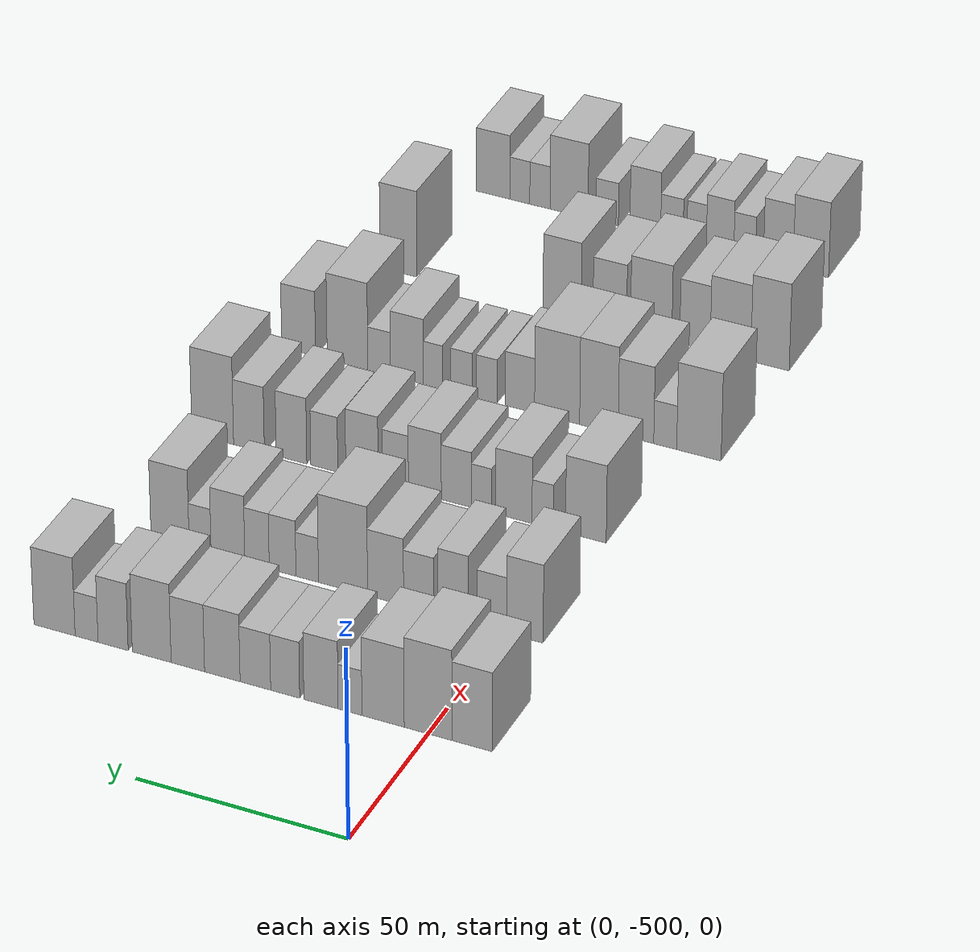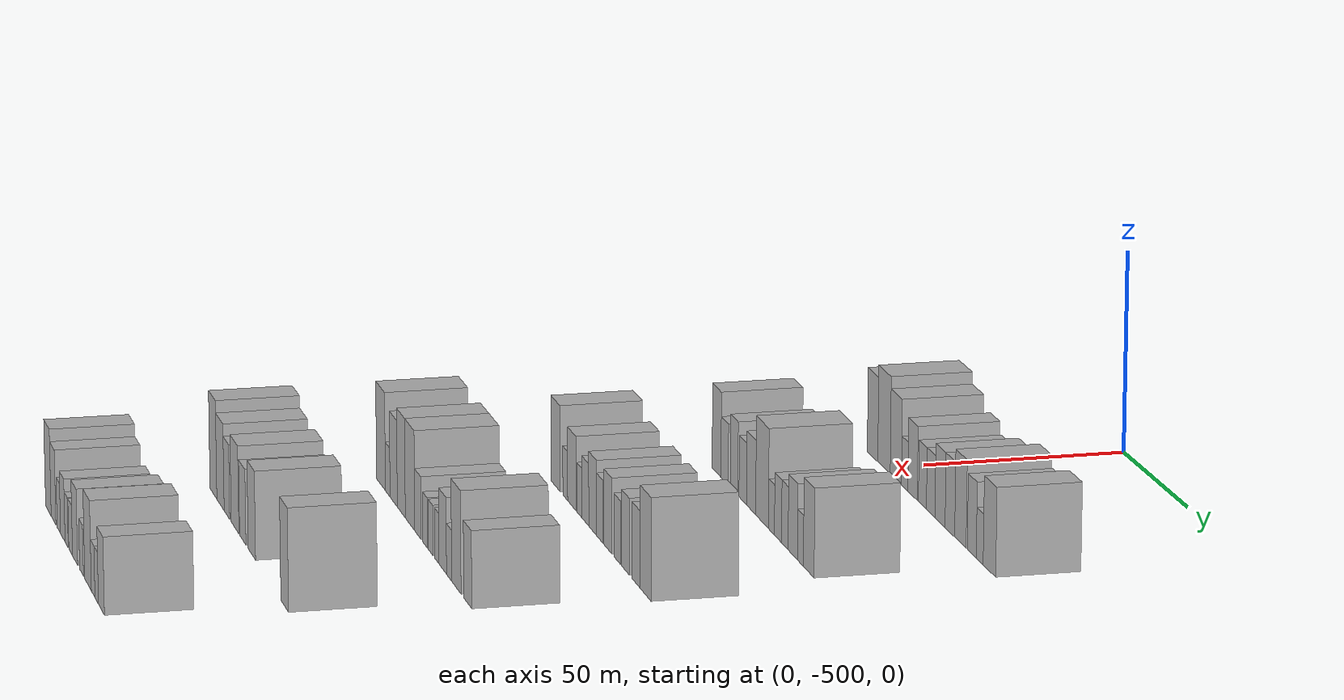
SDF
<sdf version="1.6">
 <world name="default">
  <model name="building_14">
   <static>1</static>
   <pose>50.0000 -510.2933 0 0.000000 0.000000 0.000000</pose>
   <link name="link">
    <pose>0 0 10.50 0 0 0</pose>
    <collision name="collision"><geometry><box><size>20.0000 9.5571 21.0000</size></box></geometry></collision>
    <visual name="visual">
     <cast_shadows>0</cast_shadows>
     <geometry><box><size>20.0000 9.5571 21.0000</size></box></geometry>
     <material>
      <script>
       <uri>model://HANNAS_wall/materials/scripts</uri>
       <uri>model://HANNAS_wall/materials/textures</uri>
       <name>vrc/HANNAS_wall</name>
      </script>
     </material>
    </visual>
   </link>
  </model>
  <model name="building_15">
   <static>1</static>
   <pose>50.0000 -499.8959 0 0.000000 0.000000 0.000000</pose>
   <link name="link">
    <pose>0 0 12.00 0 0 0</pose>
    <collision name="collision"><geometry><box><size>20.0000 11.2377 24.0000</size></box></geometry></collision>
    <visual name="visual">
     <cast_shadows>0</cast_shadows>
     <geometry><box><size>20.0000 11.2377 24.0000</size></box></geometry>
     <material>
      <script>
       <uri>model://HANNAS_wall/materials/scripts</uri>
       <uri>model://HANNAS_wall/materials/textures</uri>
       <name>vrc/HANNAS_wall</name>
      </script>
     </material>
    </visual>
   </link>
  </model>
  <model name="building_16">
   <static>1</static>
   <pose>50.0000 -489.2593 0 0.000000 0.000000 0.000000</pose>
   <link name="link">
    <pose>0 0 10.50 0 0 0</pose>
    <collision name="collision"><geometry><box><size>20.0000 10.0355 21.0000</size></box></geometry></collision>
    <visual name="visual">
     <cast_shadows>0</cast_shadows>
     <geometry><box><size>20.0000 10.0355 21.0000</size></box></geometry>
     <material>
      <script>
       <uri>model://HANNAS_wall/materials/scripts</uri>
       <uri>model://HANNAS_wall/materials/textures</uri>
       <name>vrc/HANNAS_wall</name>
      </script>
     </material>
    </visual>
   </link>
  </model>
  <model name="building_17">
   <static>1</static>
   <pose>50.0000 -481.4059 0 0.000000 0.000000 0.000000</pose>
   <link name="link">
    <pose>0 0 6.00 0 0 0</pose>
    <collision name="collision"><geometry><box><size>20.0000 5.6714 12.0000</size></box></geometry></collision>
    <visual name="visual">
     <cast_shadows>0</cast_shadows>
     <geometry><box><size>20.0000 5.6714 12.0000</size></box></geometry>
     <material>
      <script>
       <uri>model://HANNAS_wall/materials/scripts</uri>
       <uri>model://HANNAS_wall/materials/textures</uri>
       <name>vrc/HANNAS_wall</name>
      </script>
     </material>
    </visual>
   </link>
  </model>
  <model name="building_18">
   <static>1</static>
   <pose>50.0000 -474.4728 0 0.000000 0.000000 0.000000</pose>
   <link name="link">
    <pose>0 0 9.00 0 0 0</pose>
    <collision name="collision"><geometry><box><size>20.0000 8.1948 18.0000</size></box></geometry></collision>
    <visual name="visual">
     <cast_shadows>0</cast_shadows>
     <geometry><box><size>20.0000 8.1948 18.0000</size></box></geometry>
     <material>
      <script>
       <uri>model://HANNAS_wall/materials/scripts</uri>
       <uri>model://HANNAS_wall/materials/textures</uri>
       <name>vrc/HANNAS_wall</name>
      </script>
     </material>
    </visual>
   </link>
  </model>
  <model name="building_19">
   <static>1</static>
   <pose>50.0000 -465.8986 0 0.000000 0.000000 0.000000</pose>
   <link name="link">
    <pose>0 0 7.50 0 0 0</pose>
    <collision name="collision"><geometry><box><size>20.0000 6.9536 15.0000</size></box></geometry></collision>
    <visual name="visual">
     <cast_shadows>0</cast_shadows>
     <geometry><box><size>20.0000 6.9536 15.0000</size></box></geometry>
     <material>
      <script>
       <uri>model://HANNAS_wall/materials/scripts</uri>
       <uri>model://HANNAS_wall/materials/textures</uri>
       <name>vrc/HANNAS_wall</name>
      </script>
     </material>
    </visual>
   </link>
  </model>
  <model name="building_20">
   <static>1</static>
   <pose>50.0000 -458.7400 0 0.000000 0.000000 0.000000</pose>
   <link name="link">
    <pose>0 0 7.50 0 0 0</pose>
    <collision name="collision"><geometry><box><size>20.0000 7.3635 15.0000</size></box></geometry></collision>
    <visual name="visual">
     <cast_shadows>0</cast_shadows>
     <geometry><box><size>20.0000 7.3635 15.0000</size></box></geometry>
     <material>
      <script>
       <uri>model://HANNAS_wall/materials/scripts</uri>
       <uri>model://HANNAS_wall/materials/textures</uri>
       <name>vrc/HANNAS_wall</name>
      </script>
     </material>
    </visual>
   </link>
  </model>
  <model name="building_21">
   <static>1</static>
   <pose>50.0000 -450.7693 0 0.000000 0.000000 0.000000</pose>
   <link name="link">
    <pose>0 0 9.00 0 0 0</pose>
    <collision name="collision"><geometry><box><size>20.0000 8.5780 18.0000</size></box></geometry></collision>
    <visual name="visual">
     <cast_shadows>0</cast_shadows>
     <geometry><box><size>20.0000 8.5780 18.0000</size></box></geometry>
     <material>
      <script>
       <uri>model://HANNAS_wall/materials/scripts</uri>
       <uri>model://HANNAS_wall/materials/textures</uri>
       <name>vrc/HANNAS_wall</name>
      </script>
     </material>
    </visual>
   </link>
  </model>
  <model name="building_22">
   <static>1</static>
   <pose>50.0000 -442.4271 0 0.000000 0.000000 0.000000</pose>
   <link name="link">
    <pose>0 0 9.00 0 0 0</pose>
    <collision name="collision"><geometry><box><size>20.0000 8.1065 18.0000</size></box></geometry></collision>
    <visual name="visual">
     <cast_shadows>0</cast_shadows>
     <geometry><box><size>20.0000 8.1065 18.0000</size></box></geometry>
     <material>
      <script>
       <uri>model://HANNAS_wall/materials/scripts</uri>
       <uri>model://HANNAS_wall/materials/textures</uri>
       <name>vrc/HANNAS_wall</name>
      </script>
     </material>
    </visual>
   </link>
  </model>
  <model name="building_23">
   <static>1</static>
   <pose>50.0000 -433.6353 0 0.000000 0.000000 0.000000</pose>
   <link name="link">
    <pose>0 0 10.50 0 0 0</pose>
    <collision name="collision"><geometry><box><size>20.0000 9.4771 21.0000</size></box></geometry></collision>
    <visual name="visual">
     <cast_shadows>0</cast_shadows>
     <geometry><box><size>20.0000 9.4771 21.0000</size></box></geometry>
     <material>
      <script>
       <uri>model://HANNAS_wall/materials/scripts</uri>
       <uri>model://HANNAS_wall/materials/textures</uri>
       <name>vrc/HANNAS_wall</name>
      </script>
     </material>
    </visual>
   </link>
  </model>
  <model name="building_24">
   <static>1</static>
   <pose>50.0000 -424.2158 0 0.000000 0.000000 0.000000</pose>
   <link name="link">
    <pose>0 0 9.00 0 0 0</pose>
    <collision name="collision"><geometry><box><size>20.0000 7.3619 18.0000</size></box></geometry></collision>
    <visual name="visual">
     <cast_shadows>0</cast_shadows>
     <geometry><box><size>20.0000 7.3619 18.0000</size></box></geometry>
     <material>
      <script>
       <uri>model://HANNAS_wall/materials/scripts</uri>
       <uri>model://HANNAS_wall/materials/textures</uri>
       <name>vrc/HANNAS_wall</name>
      </script>
     </material>
    </visual>
   </link>
  </model>
  <model name="building_25">
   <static>1</static>
   <pose>50.0000 -417.7162 0 0.000000 0.000000 0.000000</pose>
   <link name="link">
    <pose>0 0 6.00 0 0 0</pose>
    <collision name="collision"><geometry><box><size>20.0000 5.6374 12.0000</size></box></geometry></collision>
    <visual name="visual">
     <cast_shadows>0</cast_shadows>
     <geometry><box><size>20.0000 5.6374 12.0000</size></box></geometry>
     <material>
      <script>
       <uri>model://HANNAS_wall/materials/scripts</uri>
       <uri>model://HANNAS_wall/materials/textures</uri>
       <name>vrc/HANNAS_wall</name>
      </script>
     </material>
    </visual>
   </link>
  </model>
  <model name="building_26">
   <static>1</static>
   <pose>50.0000 -409.8251 0 0.000000 0.000000 0.000000</pose>
   <link name="link">
    <pose>0 0 10.50 0 0 0</pose>
    <collision name="collision"><geometry><box><size>20.0000 10.1448 21.0000</size></box></geometry></collision>
    <visual name="visual">
     <cast_shadows>0</cast_shadows>
     <geometry><box><size>20.0000 10.1448 21.0000</size></box></geometry>
     <material>
      <script>
       <uri>model://HANNAS_wall/materials/scripts</uri>
       <uri>model://HANNAS_wall/materials/textures</uri>
       <name>vrc/HANNAS_wall</name>
      </script>
     </material>
    </visual>
   </link>
  </model>
  <model name="building_157">
   <static>1</static>
   <pose>90.0000 -504.7712 0 0.000000 0.000000 0.000000</pose>
   <link name="link">
    <pose>0 0 10.50 0 0 0</pose>
    <collision name="collision"><geometry><box><size>20.0000 8.7549 21.0000</size></box></geometry></collision>
    <visual name="visual">
     <cast_shadows>0</cast_shadows>
     <geometry><box><size>20.0000 8.7549 21.0000</size></box></geometry>
     <material>
      <script>
       <uri>model://HANNAS_wall/materials/scripts</uri>
       <uri>model://HANNAS_wall/materials/textures</uri>
       <name>vrc/HANNAS_wall</name>
      </script>
     </material>
    </visual>
   </link>
  </model>
  <model name="building_158">
   <static>1</static>
   <pose>90.0000 -496.8091 0 0.000000 0.000000 0.000000</pose>
   <link name="link">
    <pose>0 0 7.50 0 0 0</pose>
    <collision name="collision"><geometry><box><size>20.0000 7.1692 15.0000</size></box></geometry></collision>
    <visual name="visual">
     <cast_shadows>0</cast_shadows>
     <geometry><box><size>20.0000 7.1692 15.0000</size></box></geometry>
     <material>
      <script>
       <uri>model://HANNAS_wall/materials/scripts</uri>
       <uri>model://HANNAS_wall/materials/textures</uri>
       <name>vrc/HANNAS_wall</name>
      </script>
     </material>
    </visual>
   </link>
  </model>
  <model name="building_159">
   <static>1</static>
   <pose>90.0000 -487.5349 0 0.000000 0.000000 0.000000</pose>
   <link name="link">
    <pose>0 0 9.00 0 0 0</pose>
    <collision name="collision"><geometry><box><size>20.0000 7.3791 18.0000</size></box></geometry></collision>
    <visual name="visual">
     <cast_shadows>0</cast_shadows>
     <geometry><box><size>20.0000 7.3791 18.0000</size></box></geometry>
     <material>
      <script>
       <uri>model://HANNAS_wall/materials/scripts</uri>
       <uri>model://HANNAS_wall/materials/textures</uri>
       <name>vrc/HANNAS_wall</name>
      </script>
     </material>
    </visual>
   </link>
  </model>
  <model name="building_160">
   <static>1</static>
   <pose>90.0000 -479.1978 0 0.000000 0.000000 0.000000</pose>
   <link name="link">
    <pose>0 0 7.50 0 0 0</pose>
    <collision name="collision"><geometry><box><size>20.0000 7.2951 15.0000</size></box></geometry></collision>
    <visual name="visual">
     <cast_shadows>0</cast_shadows>
     <geometry><box><size>20.0000 7.2951 15.0000</size></box></geometry>
     <material>
      <script>
       <uri>model://HANNAS_wall/materials/scripts</uri>
       <uri>model://HANNAS_wall/materials/textures</uri>
       <name>vrc/HANNAS_wall</name>
      </script>
     </material>
    </visual>
   </link>
  </model>
  <model name="building_161">
   <static>1</static>
   <pose>90.0000 -471.1731 0 0.000000 0.000000 0.000000</pose>
   <link name="link">
    <pose>0 0 9.00 0 0 0</pose>
    <collision name="collision"><geometry><box><size>20.0000 8.7544 18.0000</size></box></geometry></collision>
    <visual name="visual">
     <cast_shadows>0</cast_shadows>
     <geometry><box><size>20.0000 8.7544 18.0000</size></box></geometry>
     <material>
      <script>
       <uri>model://HANNAS_wall/materials/scripts</uri>
       <uri>model://HANNAS_wall/materials/textures</uri>
       <name>vrc/HANNAS_wall</name>
      </script>
     </material>
    </visual>
   </link>
  </model>
  <model name="building_162">
   <static>1</static>
   <pose>90.0000 -460.7985 0 0.000000 0.000000 0.000000</pose>
   <link name="link">
    <pose>0 0 12.00 0 0 0</pose>
    <collision name="collision"><geometry><box><size>20.0000 11.9949 24.0000</size></box></geometry></collision>
    <visual name="visual">
     <cast_shadows>0</cast_shadows>
     <geometry><box><size>20.0000 11.9949 24.0000</size></box></geometry>
     <material>
      <script>
       <uri>model://HANNAS_wall/materials/scripts</uri>
       <uri>model://HANNAS_wall/materials/textures</uri>
       <name>vrc/HANNAS_wall</name>
      </script>
     </material>
    </visual>
   </link>
  </model>
  <model name="building_163">
   <static>1</static>
   <pose>90.0000 -452.0313 0 0.000000 0.000000 0.000000</pose>
   <link name="link">
    <pose>0 0 6.00 0 0 0</pose>
    <collision name="collision"><geometry><box><size>20.0000 5.5394 12.0000</size></box></geometry></collision>
    <visual name="visual">
     <cast_shadows>0</cast_shadows>
     <geometry><box><size>20.0000 5.5394 12.0000</size></box></geometry>
     <material>
      <script>
       <uri>model://HANNAS_wall/materials/scripts</uri>
       <uri>model://HANNAS_wall/materials/textures</uri>
       <name>vrc/HANNAS_wall</name>
      </script>
     </material>
    </visual>
   </link>
  </model>
  <model name="building_164">
   <static>1</static>
   <pose>90.0000 -445.9774 0 0.000000 0.000000 0.000000</pose>
   <link name="link">
    <pose>0 0 7.50 0 0 0</pose>
    <collision name="collision"><geometry><box><size>20.0000 6.5683 15.0000</size></box></geometry></collision>
    <visual name="visual">
     <cast_shadows>0</cast_shadows>
     <geometry><box><size>20.0000 6.5683 15.0000</size></box></geometry>
     <material>
      <script>
       <uri>model://HANNAS_wall/materials/scripts</uri>
       <uri>model://HANNAS_wall/materials/textures</uri>
       <name>vrc/HANNAS_wall</name>
      </script>
     </material>
    </visual>
   </link>
  </model>
  <model name="building_165">
   <static>1</static>
   <pose>90.0000 -439.6885 0 0.000000 0.000000 0.000000</pose>
   <link name="link">
    <pose>0 0 7.50 0 0 0</pose>
    <collision name="collision"><geometry><box><size>20.0000 6.0095 15.0000</size></box></geometry></collision>
    <visual name="visual">
     <cast_shadows>0</cast_shadows>
     <geometry><box><size>20.0000 6.0095 15.0000</size></box></geometry>
     <material>
      <script>
       <uri>model://HANNAS_wall/materials/scripts</uri>
       <uri>model://HANNAS_wall/materials/textures</uri>
       <name>vrc/HANNAS_wall</name>
      </script>
     </material>
    </visual>
   </link>
  </model>
  <model name="building_166">
   <static>1</static>
   <pose>90.0000 -432.5055 0 0.000000 0.000000 0.000000</pose>
   <link name="link">
    <pose>0 0 9.00 0 0 0</pose>
    <collision name="collision"><geometry><box><size>20.0000 8.3567 18.0000</size></box></geometry></collision>
    <visual name="visual">
     <cast_shadows>0</cast_shadows>
     <geometry><box><size>20.0000 8.3567 18.0000</size></box></geometry>
     <material>
      <script>
       <uri>model://HANNAS_wall/materials/scripts</uri>
       <uri>model://HANNAS_wall/materials/textures</uri>
       <name>vrc/HANNAS_wall</name>
      </script>
     </material>
    </visual>
   </link>
  </model>
  <model name="building_167">
   <static>1</static>
   <pose>90.0000 -425.6043 0 0.000000 0.000000 0.000000</pose>
   <link name="link">
    <pose>0 0 6.00 0 0 0</pose>
    <collision name="collision"><geometry><box><size>20.0000 5.4456 12.0000</size></box></geometry></collision>
    <visual name="visual">
     <cast_shadows>0</cast_shadows>
     <geometry><box><size>20.0000 5.4456 12.0000</size></box></geometry>
     <material>
      <script>
       <uri>model://HANNAS_wall/materials/scripts</uri>
       <uri>model://HANNAS_wall/materials/textures</uri>
       <name>vrc/HANNAS_wall</name>
      </script>
     </material>
    </visual>
   </link>
  </model>
  <model name="building_168">
   <static>1</static>
   <pose>90.0000 -418.1313 0 0.000000 0.000000 0.000000</pose>
   <link name="link">
    <pose>0 0 10.50 0 0 0</pose>
    <collision name="collision"><geometry><box><size>20.0000 9.5003 21.0000</size></box></geometry></collision>
    <visual name="visual">
     <cast_shadows>0</cast_shadows>
     <geometry><box><size>20.0000 9.5003 21.0000</size></box></geometry>
     <material>
      <script>
       <uri>model://HANNAS_wall/materials/scripts</uri>
       <uri>model://HANNAS_wall/materials/textures</uri>
       <name>vrc/HANNAS_wall</name>
      </script>
     </material>
    </visual>
   </link>
  </model>
  <model name="building_294">
   <static>1</static>
   <pose>130.0000 -501.8209 0 0.000000 0.000000 0.000000</pose>
   <link name="link">
    <pose>0 0 10.50 0 0 0</pose>
    <collision name="collision"><geometry><box><size>20.0000 9.9045 21.0000</size></box></geometry></collision>
    <visual name="visual">
     <cast_shadows>0</cast_shadows>
     <geometry><box><size>20.0000 9.9045 21.0000</size></box></geometry>
     <material>
      <script>
       <uri>model://HANNAS_wall/materials/scripts</uri>
       <uri>model://HANNAS_wall/materials/textures</uri>
       <name>vrc/HANNAS_wall</name>
      </script>
     </material>
    </visual>
   </link>
  </model>
  <model name="building_295">
   <static>1</static>
   <pose>130.0000 -491.2690 0 0.000000 0.000000 0.000000</pose>
   <link name="link">
    <pose>0 0 6.00 0 0 0</pose>
    <collision name="collision"><geometry><box><size>20.0000 5.1993 12.0000</size></box></geometry></collision>
    <visual name="visual">
     <cast_shadows>0</cast_shadows>
     <geometry><box><size>20.0000 5.1993 12.0000</size></box></geometry>
     <material>
      <script>
       <uri>model://HANNAS_wall/materials/scripts</uri>
       <uri>model://HANNAS_wall/materials/textures</uri>
       <name>vrc/HANNAS_wall</name>
      </script>
     </material>
    </visual>
   </link>
  </model>
  <model name="building_296">
   <static>1</static>
   <pose>130.0000 -484.2086 0 0.000000 0.000000 0.000000</pose>
   <link name="link">
    <pose>0 0 9.00 0 0 0</pose>
    <collision name="collision"><geometry><box><size>20.0000 8.9215 18.0000</size></box></geometry></collision>
    <visual name="visual">
     <cast_shadows>0</cast_shadows>
     <geometry><box><size>20.0000 8.9215 18.0000</size></box></geometry>
     <material>
      <script>
       <uri>model://HANNAS_wall/materials/scripts</uri>
       <uri>model://HANNAS_wall/materials/textures</uri>
       <name>vrc/HANNAS_wall</name>
      </script>
     </material>
    </visual>
   </link>
  </model>
  <model name="building_297">
   <static>1</static>
   <pose>130.0000 -476.2665 0 0.000000 0.000000 0.000000</pose>
   <link name="link">
    <pose>0 0 6.00 0 0 0</pose>
    <collision name="collision"><geometry><box><size>20.0000 4.9625 12.0000</size></box></geometry></collision>
    <visual name="visual">
     <cast_shadows>0</cast_shadows>
     <geometry><box><size>20.0000 4.9625 12.0000</size></box></geometry>
     <material>
      <script>
       <uri>model://HANNAS_wall/materials/scripts</uri>
       <uri>model://HANNAS_wall/materials/textures</uri>
       <name>vrc/HANNAS_wall</name>
      </script>
     </material>
    </visual>
   </link>
  </model>
  <model name="building_298">
   <static>1</static>
   <pose>130.0000 -470.0543 0 0.000000 0.000000 0.000000</pose>
   <link name="link">
    <pose>0 0 7.50 0 0 0</pose>
    <collision name="collision"><geometry><box><size>20.0000 7.4619 15.0000</size></box></geometry></collision>
    <visual name="visual">
     <cast_shadows>0</cast_shadows>
     <geometry><box><size>20.0000 7.4619 15.0000</size></box></geometry>
     <material>
      <script>
       <uri>model://HANNAS_wall/materials/scripts</uri>
       <uri>model://HANNAS_wall/materials/textures</uri>
       <name>vrc/HANNAS_wall</name>
      </script>
     </material>
    </visual>
   </link>
  </model>
  <model name="building_299">
   <static>1</static>
   <pose>130.0000 -462.2434 0 0.000000 0.000000 0.000000</pose>
   <link name="link">
    <pose>0 0 9.00 0 0 0</pose>
    <collision name="collision"><geometry><box><size>20.0000 8.1600 18.0000</size></box></geometry></collision>
    <visual name="visual">
     <cast_shadows>0</cast_shadows>
     <geometry><box><size>20.0000 8.1600 18.0000</size></box></geometry>
     <material>
      <script>
       <uri>model://HANNAS_wall/materials/scripts</uri>
       <uri>model://HANNAS_wall/materials/textures</uri>
       <name>vrc/HANNAS_wall</name>
      </script>
     </material>
    </visual>
   </link>
  </model>
  <model name="building_300">
   <static>1</static>
   <pose>130.0000 -454.8946 0 0.000000 0.000000 0.000000</pose>
   <link name="link">
    <pose>0 0 7.50 0 0 0</pose>
    <collision name="collision"><geometry><box><size>20.0000 6.5376 15.0000</size></box></geometry></collision>
    <visual name="visual">
     <cast_shadows>0</cast_shadows>
     <geometry><box><size>20.0000 6.5376 15.0000</size></box></geometry>
     <material>
      <script>
       <uri>model://HANNAS_wall/materials/scripts</uri>
       <uri>model://HANNAS_wall/materials/textures</uri>
       <name>vrc/HANNAS_wall</name>
      </script>
     </material>
    </visual>
   </link>
  </model>
  <model name="building_301">
   <static>1</static>
   <pose>130.0000 -446.5856 0 0.000000 0.000000 0.000000</pose>
   <link name="link">
    <pose>0 0 9.00 0 0 0</pose>
    <collision name="collision"><geometry><box><size>20.0000 8.0802 18.0000</size></box></geometry></collision>
    <visual name="visual">
     <cast_shadows>0</cast_shadows>
     <geometry><box><size>20.0000 8.0802 18.0000</size></box></geometry>
     <material>
      <script>
       <uri>model://HANNAS_wall/materials/scripts</uri>
       <uri>model://HANNAS_wall/materials/textures</uri>
       <name>vrc/HANNAS_wall</name>
      </script>
     </material>
    </visual>
   </link>
  </model>
  <model name="building_302">
   <static>1</static>
   <pose>130.0000 -437.1595 0 0.000000 0.000000 0.000000</pose>
   <link name="link">
    <pose>0 0 7.50 0 0 0</pose>
    <collision name="collision"><geometry><box><size>20.0000 6.7720 15.0000</size></box></geometry></collision>
    <visual name="visual">
     <cast_shadows>0</cast_shadows>
     <geometry><box><size>20.0000 6.7720 15.0000</size></box></geometry>
     <material>
      <script>
       <uri>model://HANNAS_wall/materials/scripts</uri>
       <uri>model://HANNAS_wall/materials/textures</uri>
       <name>vrc/HANNAS_wall</name>
      </script>
     </material>
    </visual>
   </link>
  </model>
  <model name="building_303">
   <static>1</static>
   <pose>130.0000 -428.9290 0 0.000000 0.000000 0.000000</pose>
   <link name="link">
    <pose>0 0 9.00 0 0 0</pose>
    <collision name="collision"><geometry><box><size>20.0000 7.6891 18.0000</size></box></geometry></collision>
    <visual name="visual">
     <cast_shadows>0</cast_shadows>
     <geometry><box><size>20.0000 7.6891 18.0000</size></box></geometry>
     <material>
      <script>
       <uri>model://HANNAS_wall/materials/scripts</uri>
       <uri>model://HANNAS_wall/materials/textures</uri>
       <name>vrc/HANNAS_wall</name>
      </script>
     </material>
    </visual>
   </link>
  </model>
  <model name="building_304">
   <static>1</static>
   <pose>130.0000 -418.1907 0 0.000000 0.000000 0.000000</pose>
   <link name="link">
    <pose>0 0 9.00 0 0 0</pose>
    <collision name="collision"><geometry><box><size>20.0000 7.7874 18.0000</size></box></geometry></collision>
    <visual name="visual">
     <cast_shadows>0</cast_shadows>
     <geometry><box><size>20.0000 7.7874 18.0000</size></box></geometry>
     <material>
      <script>
       <uri>model://HANNAS_wall/materials/scripts</uri>
       <uri>model://HANNAS_wall/materials/textures</uri>
       <name>vrc/HANNAS_wall</name>
      </script>
     </material>
    </visual>
   </link>
  </model>
  <model name="building_305">
   <static>1</static>
   <pose>130.0000 -408.9998 0 0.000000 0.000000 0.000000</pose>
   <link name="link">
    <pose>0 0 12.00 0 0 0</pose>
    <collision name="collision"><geometry><box><size>20.0000 10.5945 24.0000</size></box></geometry></collision>
    <visual name="visual">
     <cast_shadows>0</cast_shadows>
     <geometry><box><size>20.0000 10.5945 24.0000</size></box></geometry>
     <material>
      <script>
       <uri>model://HANNAS_wall/materials/scripts</uri>
       <uri>model://HANNAS_wall/materials/textures</uri>
       <name>vrc/HANNAS_wall</name>
      </script>
     </material>
    </visual>
   </link>
  </model>
  <model name="building_431">
   <static>1</static>
   <pose>170.0000 -512.3389 0 0.000000 0.000000 0.000000</pose>
   <link name="link">
    <pose>0 0 12.00 0 0 0</pose>
    <collision name="collision"><geometry><box><size>20.0000 10.9442 24.0000</size></box></geometry></collision>
    <visual name="visual">
     <cast_shadows>0</cast_shadows>
     <geometry><box><size>20.0000 10.9442 24.0000</size></box></geometry>
     <material>
      <script>
       <uri>model://HANNAS_wall/materials/scripts</uri>
       <uri>model://HANNAS_wall/materials/textures</uri>
       <name>vrc/HANNAS_wall</name>
      </script>
     </material>
    </visual>
   </link>
  </model>
  <model name="building_432">
   <static>1</static>
   <pose>170.0000 -504.0252 0 0.000000 0.000000 0.000000</pose>
   <link name="link">
    <pose>0 0 6.00 0 0 0</pose>
    <collision name="collision"><geometry><box><size>20.0000 5.6831 12.0000</size></box></geometry></collision>
    <visual name="visual">
     <cast_shadows>0</cast_shadows>
     <geometry><box><size>20.0000 5.6831 12.0000</size></box></geometry>
     <material>
      <script>
       <uri>model://HANNAS_wall/materials/scripts</uri>
       <uri>model://HANNAS_wall/materials/textures</uri>
       <name>vrc/HANNAS_wall</name>
      </script>
     </material>
    </visual>
   </link>
  </model>
  <model name="building_433">
   <static>1</static>
   <pose>170.0000 -496.7724 0 0.000000 0.000000 0.000000</pose>
   <link name="link">
    <pose>0 0 10.50 0 0 0</pose>
    <collision name="collision"><geometry><box><size>20.0000 8.8225 21.0000</size></box></geometry></collision>
    <visual name="visual">
     <cast_shadows>0</cast_shadows>
     <geometry><box><size>20.0000 8.8225 21.0000</size></box></geometry>
     <material>
      <script>
       <uri>model://HANNAS_wall/materials/scripts</uri>
       <uri>model://HANNAS_wall/materials/textures</uri>
       <name>vrc/HANNAS_wall</name>
      </script>
     </material>
    </visual>
   </link>
  </model>
  <model name="building_434">
   <static>1</static>
   <pose>170.0000 -487.5609 0 0.000000 0.000000 0.000000</pose>
   <link name="link">
    <pose>0 0 12.00 0 0 0</pose>
    <collision name="collision"><geometry><box><size>20.0000 9.6005 24.0000</size></box></geometry></collision>
    <visual name="visual">
     <cast_shadows>0</cast_shadows>
     <geometry><box><size>20.0000 9.6005 24.0000</size></box></geometry>
     <material>
      <script>
       <uri>model://HANNAS_wall/materials/scripts</uri>
       <uri>model://HANNAS_wall/materials/textures</uri>
       <name>vrc/HANNAS_wall</name>
      </script>
     </material>
    </visual>
   </link>
  </model>
  <model name="building_435">
   <static>1</static>
   <pose>170.0000 -477.1231 0 0.000000 0.000000 0.000000</pose>
   <link name="link">
    <pose>0 0 12.00 0 0 0</pose>
    <collision name="collision"><geometry><box><size>20.0000 11.2752 24.0000</size></box></geometry></collision>
    <visual name="visual">
     <cast_shadows>0</cast_shadows>
     <geometry><box><size>20.0000 11.2752 24.0000</size></box></geometry>
     <material>
      <script>
       <uri>model://HANNAS_wall/materials/scripts</uri>
       <uri>model://HANNAS_wall/materials/textures</uri>
       <name>vrc/HANNAS_wall</name>
      </script>
     </material>
    </visual>
   </link>
  </model>
  <model name="building_436">
   <static>1</static>
   <pose>170.0000 -467.8001 0 0.000000 0.000000 0.000000</pose>
   <link name="link">
    <pose>0 0 7.50 0 0 0</pose>
    <collision name="collision"><geometry><box><size>20.0000 7.3707 15.0000</size></box></geometry></collision>
    <visual name="visual">
     <cast_shadows>0</cast_shadows>
     <geometry><box><size>20.0000 7.3707 15.0000</size></box></geometry>
     <material>
      <script>
       <uri>model://HANNAS_wall/materials/scripts</uri>
       <uri>model://HANNAS_wall/materials/textures</uri>
       <name>vrc/HANNAS_wall</name>
      </script>
     </material>
    </visual>
   </link>
  </model>
  <model name="building_437">
   <static>1</static>
   <pose>170.0000 -459.4392 0 0.000000 0.000000 0.000000</pose>
   <link name="link">
    <pose>0 0 6.00 0 0 0</pose>
    <collision name="collision"><geometry><box><size>20.0000 5.3512 12.0000</size></box></geometry></collision>
    <visual name="visual">
     <cast_shadows>0</cast_shadows>
     <geometry><box><size>20.0000 5.3512 12.0000</size></box></geometry>
     <material>
      <script>
       <uri>model://HANNAS_wall/materials/scripts</uri>
       <uri>model://HANNAS_wall/materials/textures</uri>
       <name>vrc/HANNAS_wall</name>
      </script>
     </material>
    </visual>
   </link>
  </model>
  <model name="building_438">
   <static>1</static>
   <pose>170.0000 -453.0164 0 0.000000 0.000000 0.000000</pose>
   <link name="link">
    <pose>0 0 6.00 0 0 0</pose>
    <collision name="collision"><geometry><box><size>20.0000 5.4944 12.0000</size></box></geometry></collision>
    <visual name="visual">
     <cast_shadows>0</cast_shadows>
     <geometry><box><size>20.0000 5.4944 12.0000</size></box></geometry>
     <material>
      <script>
       <uri>model://HANNAS_wall/materials/scripts</uri>
       <uri>model://HANNAS_wall/materials/textures</uri>
       <name>vrc/HANNAS_wall</name>
      </script>
     </material>
    </visual>
   </link>
  </model>
  <model name="building_439">
   <static>1</static>
   <pose>170.0000 -445.8587 0 0.000000 0.000000 0.000000</pose>
   <link name="link">
    <pose>0 0 6.00 0 0 0</pose>
    <collision name="collision"><geometry><box><size>20.0000 4.8209 12.0000</size></box></geometry></collision>
    <visual name="visual">
     <cast_shadows>0</cast_shadows>
     <geometry><box><size>20.0000 4.8209 12.0000</size></box></geometry>
     <material>
      <script>
       <uri>model://HANNAS_wall/materials/scripts</uri>
       <uri>model://HANNAS_wall/materials/textures</uri>
       <name>vrc/HANNAS_wall</name>
      </script>
     </material>
    </visual>
   </link>
  </model>
  <model name="building_440">
   <static>1</static>
   <pose>170.0000 -439.2414 0 0.000000 0.000000 0.000000</pose>
   <link name="link">
    <pose>0 0 9.00 0 0 0</pose>
    <collision name="collision"><geometry><box><size>20.0000 8.4138 18.0000</size></box></geometry></collision>
    <visual name="visual">
     <cast_shadows>0</cast_shadows>
     <geometry><box><size>20.0000 8.4138 18.0000</size></box></geometry>
     <material>
      <script>
       <uri>model://HANNAS_wall/materials/scripts</uri>
       <uri>model://HANNAS_wall/materials/textures</uri>
       <name>vrc/HANNAS_wall</name>
      </script>
     </material>
    </visual>
   </link>
  </model>
  <model name="building_441">
   <static>1</static>
   <pose>170.0000 -432.1455 0 0.000000 0.000000 0.000000</pose>
   <link name="link">
    <pose>0 0 6.00 0 0 0</pose>
    <collision name="collision"><geometry><box><size>20.0000 5.7778 12.0000</size></box></geometry></collision>
    <visual name="visual">
     <cast_shadows>0</cast_shadows>
     <geometry><box><size>20.0000 5.7778 12.0000</size></box></geometry>
     <material>
      <script>
       <uri>model://HANNAS_wall/materials/scripts</uri>
       <uri>model://HANNAS_wall/materials/textures</uri>
       <name>vrc/HANNAS_wall</name>
      </script>
     </material>
    </visual>
   </link>
  </model>
  <model name="building_442">
   <static>1</static>
   <pose>170.0000 -424.0539 0 0.000000 0.000000 0.000000</pose>
   <link name="link">
    <pose>0 0 12.00 0 0 0</pose>
    <collision name="collision"><geometry><box><size>20.0000 10.4054 24.0000</size></box></geometry></collision>
    <visual name="visual">
     <cast_shadows>0</cast_shadows>
     <geometry><box><size>20.0000 10.4054 24.0000</size></box></geometry>
     <material>
      <script>
       <uri>model://HANNAS_wall/materials/scripts</uri>
       <uri>model://HANNAS_wall/materials/textures</uri>
       <name>vrc/HANNAS_wall</name>
      </script>
     </material>
    </visual>
   </link>
  </model>
  <model name="building_443">
   <static>1</static>
   <pose>170.0000 -411.5007 0 0.000000 0.000000 0.000000</pose>
   <link name="link">
    <pose>0 0 9.00 0 0 0</pose>
    <collision name="collision"><geometry><box><size>20.0000 8.7010 18.0000</size></box></geometry></collision>
    <visual name="visual">
     <cast_shadows>0</cast_shadows>
     <geometry><box><size>20.0000 8.7010 18.0000</size></box></geometry>
     <material>
      <script>
       <uri>model://HANNAS_wall/materials/scripts</uri>
       <uri>model://HANNAS_wall/materials/textures</uri>
       <name>vrc/HANNAS_wall</name>
      </script>
     </material>
    </visual>
   </link>
  </model>
  <model name="building_565">
   <static>1</static>
   <pose>210.0000 -513.3354 0 0.000000 0.000000 0.000000</pose>
   <link name="link">
    <pose>0 0 12.00 0 0 0</pose>
    <collision name="collision"><geometry><box><size>20.0000 9.6214 24.0000</size></box></geometry></collision>
    <visual name="visual">
     <cast_shadows>0</cast_shadows>
     <geometry><box><size>20.0000 9.6214 24.0000</size></box></geometry>
     <material>
      <script>
       <uri>model://HANNAS_wall/materials/scripts</uri>
       <uri>model://HANNAS_wall/materials/textures</uri>
       <name>vrc/HANNAS_wall</name>
      </script>
     </material>
    </visual>
   </link>
  </model>
  <model name="building_566">
   <static>1</static>
   <pose>210.0000 -503.4214 0 0.000000 0.000000 0.000000</pose>
   <link name="link">
    <pose>0 0 10.50 0 0 0</pose>
    <collision name="collision"><geometry><box><size>20.0000 10.2068 21.0000</size></box></geometry></collision>
    <visual name="visual">
     <cast_shadows>0</cast_shadows>
     <geometry><box><size>20.0000 10.2068 21.0000</size></box></geometry>
     <material>
      <script>
       <uri>model://HANNAS_wall/materials/scripts</uri>
       <uri>model://HANNAS_wall/materials/textures</uri>
       <name>vrc/HANNAS_wall</name>
      </script>
     </material>
    </visual>
   </link>
  </model>
  <model name="building_567">
   <static>1</static>
   <pose>210.0000 -494.4802 0 0.000000 0.000000 0.000000</pose>
   <link name="link">
    <pose>0 0 9.00 0 0 0</pose>
    <collision name="collision"><geometry><box><size>20.0000 7.6755 18.0000</size></box></geometry></collision>
    <visual name="visual">
     <cast_shadows>0</cast_shadows>
     <geometry><box><size>20.0000 7.6755 18.0000</size></box></geometry>
     <material>
      <script>
       <uri>model://HANNAS_wall/materials/scripts</uri>
       <uri>model://HANNAS_wall/materials/textures</uri>
       <name>vrc/HANNAS_wall</name>
      </script>
     </material>
    </visual>
   </link>
  </model>
  <model name="building_568">
   <static>1</static>
   <pose>210.0000 -483.4020 0 0.000000 0.000000 0.000000</pose>
   <link name="link">
    <pose>0 0 10.50 0 0 0</pose>
    <collision name="collision"><geometry><box><size>20.0000 10.4811 21.0000</size></box></geometry></collision>
    <visual name="visual">
     <cast_shadows>0</cast_shadows>
     <geometry><box><size>20.0000 10.4811 21.0000</size></box></geometry>
     <material>
      <script>
       <uri>model://HANNAS_wall/materials/scripts</uri>
       <uri>model://HANNAS_wall/materials/textures</uri>
       <name>vrc/HANNAS_wall</name>
      </script>
     </material>
    </visual>
   </link>
  </model>
  <model name="building_569">
   <static>1</static>
   <pose>210.0000 -472.8908 0 0.000000 0.000000 0.000000</pose>
   <link name="link">
    <pose>0 0 9.00 0 0 0</pose>
    <collision name="collision"><geometry><box><size>20.0000 8.5411 18.0000</size></box></geometry></collision>
    <visual name="visual">
     <cast_shadows>0</cast_shadows>
     <geometry><box><size>20.0000 8.5411 18.0000</size></box></geometry>
     <material>
      <script>
       <uri>model://HANNAS_wall/materials/scripts</uri>
       <uri>model://HANNAS_wall/materials/textures</uri>
       <name>vrc/HANNAS_wall</name>
      </script>
     </material>
    </visual>
   </link>
  </model>
  <model name="building_570">
   <static>1</static>
   <pose>210.0000 -460.7483 0 0.000000 0.000000 0.000000</pose>
   <link name="link">
    <pose>0 0 10.50 0 0 0</pose>
    <collision name="collision"><geometry><box><size>20.0000 9.7439 21.0000</size></box></geometry></collision>
    <visual name="visual">
     <cast_shadows>0</cast_shadows>
     <geometry><box><size>20.0000 9.7439 21.0000</size></box></geometry>
     <material>
      <script>
       <uri>model://HANNAS_wall/materials/scripts</uri>
       <uri>model://HANNAS_wall/materials/textures</uri>
       <name>vrc/HANNAS_wall</name>
      </script>
     </material>
    </visual>
   </link>
  </model>
  <model name="building_571">
   <static>1</static>
   <pose>210.0000 -418.4500 0 0.000000 0.000000 0.000000</pose>
   <link name="link">
    <pose>0 0 12.00 0 0 0</pose>
    <collision name="collision"><geometry><box><size>20.0000 9.6176 24.0000</size></box></geometry></collision>
    <visual name="visual">
     <cast_shadows>0</cast_shadows>
     <geometry><box><size>20.0000 9.6176 24.0000</size></box></geometry>
     <material>
      <script>
       <uri>model://HANNAS_wall/materials/scripts</uri>
       <uri>model://HANNAS_wall/materials/textures</uri>
       <name>vrc/HANNAS_wall</name>
      </script>
     </material>
    </visual>
   </link>
  </model>
  <model name="building_699">
   <static>1</static>
   <pose>250.0000 -507.3364 0 0.000000 0.000000 0.000000</pose>
   <link name="link">
    <pose>0 0 10.50 0 0 0</pose>
    <collision name="collision"><geometry><box><size>20.0000 9.0166 21.0000</size></box></geometry></collision>
    <visual name="visual">
     <cast_shadows>0</cast_shadows>
     <geometry><box><size>20.0000 9.0166 21.0000</size></box></geometry>
     <material>
      <script>
       <uri>model://HANNAS_wall/materials/scripts</uri>
       <uri>model://HANNAS_wall/materials/textures</uri>
       <name>vrc/HANNAS_wall</name>
      </script>
     </material>
    </visual>
   </link>
  </model>
  <model name="building_700">
   <static>1</static>
   <pose>250.0000 -499.0235 0 0.000000 0.000000 0.000000</pose>
   <link name="link">
    <pose>0 0 9.00 0 0 0</pose>
    <collision name="collision"><geometry><box><size>20.0000 7.6092 18.0000</size></box></geometry></collision>
    <visual name="visual">
     <cast_shadows>0</cast_shadows>
     <geometry><box><size>20.0000 7.6092 18.0000</size></box></geometry>
     <material>
      <script>
       <uri>model://HANNAS_wall/materials/scripts</uri>
       <uri>model://HANNAS_wall/materials/textures</uri>
       <name>vrc/HANNAS_wall</name>
      </script>
     </material>
    </visual>
   </link>
  </model>
  <model name="building_701">
   <static>1</static>
   <pose>250.0000 -490.4245 0 0.000000 0.000000 0.000000</pose>
   <link name="link">
    <pose>0 0 6.00 0 0 0</pose>
    <collision name="collision"><geometry><box><size>20.0000 5.5889 12.0000</size></box></geometry></collision>
    <visual name="visual">
     <cast_shadows>0</cast_shadows>
     <geometry><box><size>20.0000 5.5889 12.0000</size></box></geometry>
     <material>
      <script>
       <uri>model://HANNAS_wall/materials/scripts</uri>
       <uri>model://HANNAS_wall/materials/textures</uri>
       <name>vrc/HANNAS_wall</name>
      </script>
     </material>
    </visual>
   </link>
  </model>
  <model name="building_702">
   <static>1</static>
   <pose>250.0000 -484.0871 0 0.000000 0.000000 0.000000</pose>
   <link name="link">
    <pose>0 0 7.50 0 0 0</pose>
    <collision name="collision"><geometry><box><size>20.0000 7.0858 15.0000</size></box></geometry></collision>
    <visual name="visual">
     <cast_shadows>0</cast_shadows>
     <geometry><box><size>20.0000 7.0858 15.0000</size></box></geometry>
     <material>
      <script>
       <uri>model://HANNAS_wall/materials/scripts</uri>
       <uri>model://HANNAS_wall/materials/textures</uri>
       <name>vrc/HANNAS_wall</name>
      </script>
     </material>
    </visual>
   </link>
  </model>
  <model name="building_703">
   <static>1</static>
   <pose>250.0000 -478.0457 0 0.000000 0.000000 0.000000</pose>
   <link name="link">
    <pose>0 0 6.00 0 0 0</pose>
    <collision name="collision"><geometry><box><size>20.0000 4.9969 12.0000</size></box></geometry></collision>
    <visual name="visual">
     <cast_shadows>0</cast_shadows>
     <geometry><box><size>20.0000 4.9969 12.0000</size></box></geometry>
     <material>
      <script>
       <uri>model://HANNAS_wall/materials/scripts</uri>
       <uri>model://HANNAS_wall/materials/textures</uri>
       <name>vrc/HANNAS_wall</name>
      </script>
     </material>
    </visual>
   </link>
  </model>
  <model name="building_704">
   <static>1</static>
   <pose>250.0000 -471.6507 0 0.000000 0.000000 0.000000</pose>
   <link name="link">
    <pose>0 0 6.00 0 0 0</pose>
    <collision name="collision"><geometry><box><size>20.0000 5.7932 12.0000</size></box></geometry></collision>
    <visual name="visual">
     <cast_shadows>0</cast_shadows>
     <geometry><box><size>20.0000 5.7932 12.0000</size></box></geometry>
     <material>
      <script>
       <uri>model://HANNAS_wall/materials/scripts</uri>
       <uri>model://HANNAS_wall/materials/textures</uri>
       <name>vrc/HANNAS_wall</name>
      </script>
     </material>
    </visual>
   </link>
  </model>
  <model name="building_705">
   <static>1</static>
   <pose>250.0000 -464.7656 0 0.000000 0.000000 0.000000</pose>
   <link name="link">
    <pose>0 0 9.00 0 0 0</pose>
    <collision name="collision"><geometry><box><size>20.0000 7.9770 18.0000</size></box></geometry></collision>
    <visual name="visual">
     <cast_shadows>0</cast_shadows>
     <geometry><box><size>20.0000 7.9770 18.0000</size></box></geometry>
     <material>
      <script>
       <uri>model://HANNAS_wall/materials/scripts</uri>
       <uri>model://HANNAS_wall/materials/textures</uri>
       <name>vrc/HANNAS_wall</name>
      </script>
     </material>
    </visual>
   </link>
  </model>
  <model name="building_706">
   <static>1</static>
   <pose>250.0000 -454.8258 0 0.000000 0.000000 0.000000</pose>
   <link name="link">
    <pose>0 0 6.00 0 0 0</pose>
    <collision name="collision"><geometry><box><size>20.0000 5.9027 12.0000</size></box></geometry></collision>
    <visual name="visual">
     <cast_shadows>0</cast_shadows>
     <geometry><box><size>20.0000 5.9027 12.0000</size></box></geometry>
     <material>
      <script>
       <uri>model://HANNAS_wall/materials/scripts</uri>
       <uri>model://HANNAS_wall/materials/textures</uri>
       <name>vrc/HANNAS_wall</name>
      </script>
     </material>
    </visual>
   </link>
  </model>
  <model name="building_707">
   <static>1</static>
   <pose>250.0000 -444.9150 0 0.000000 0.000000 0.000000</pose>
   <link name="link">
    <pose>0 0 10.50 0 0 0</pose>
    <collision name="collision"><geometry><box><size>20.0000 9.9189 21.0000</size></box></geometry></collision>
    <visual name="visual">
     <cast_shadows>0</cast_shadows>
     <geometry><box><size>20.0000 9.9189 21.0000</size></box></geometry>
     <material>
      <script>
       <uri>model://HANNAS_wall/materials/scripts</uri>
       <uri>model://HANNAS_wall/materials/textures</uri>
       <name>vrc/HANNAS_wall</name>
      </script>
     </material>
    </visual>
   </link>
  </model>
  <model name="building_708">
   <static>1</static>
   <pose>250.0000 -437.2841 0 0.000000 0.000000 0.000000</pose>
   <link name="link">
    <pose>0 0 6.00 0 0 0</pose>
    <collision name="collision"><geometry><box><size>20.0000 5.3428 12.0000</size></box></geometry></collision>
    <visual name="visual">
     <cast_shadows>0</cast_shadows>
     <geometry><box><size>20.0000 5.3428 12.0000</size></box></geometry>
     <material>
      <script>
       <uri>model://HANNAS_wall/materials/scripts</uri>
       <uri>model://HANNAS_wall/materials/textures</uri>
       <name>vrc/HANNAS_wall</name>
      </script>
     </material>
    </visual>
   </link>
  </model>
  <model name="building_709">
   <static>1</static>
   <pose>250.0000 -431.9910 0 0.000000 0.000000 0.000000</pose>
   <link name="link">
    <pose>0 0 6.00 0 0 0</pose>
    <collision name="collision"><geometry><box><size>20.0000 5.2434 12.0000</size></box></geometry></collision>
    <visual name="visual">
     <cast_shadows>0</cast_shadows>
     <geometry><box><size>20.0000 5.2434 12.0000</size></box></geometry>
     <material>
      <script>
       <uri>model://HANNAS_wall/materials/scripts</uri>
       <uri>model://HANNAS_wall/materials/textures</uri>
       <name>vrc/HANNAS_wall</name>
      </script>
     </material>
    </visual>
   </link>
  </model>
  <model name="building_710">
   <static>1</static>
   <pose>250.0000 -424.9639 0 0.000000 0.000000 0.000000</pose>
   <link name="link">
    <pose>0 0 9.00 0 0 0</pose>
    <collision name="collision"><geometry><box><size>20.0000 8.8109 18.0000</size></box></geometry></collision>
    <visual name="visual">
     <cast_shadows>0</cast_shadows>
     <geometry><box><size>20.0000 8.8109 18.0000</size></box></geometry>
     <material>
      <script>
       <uri>model://HANNAS_wall/materials/scripts</uri>
       <uri>model://HANNAS_wall/materials/textures</uri>
       <name>vrc/HANNAS_wall</name>
      </script>
     </material>
    </visual>
   </link>
  </model>
 </world>
</sdf>
